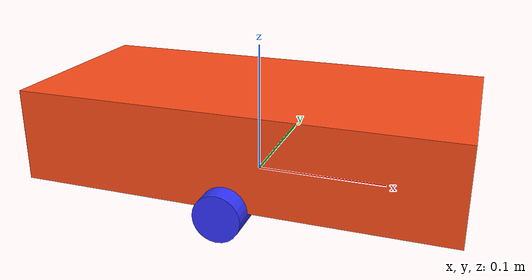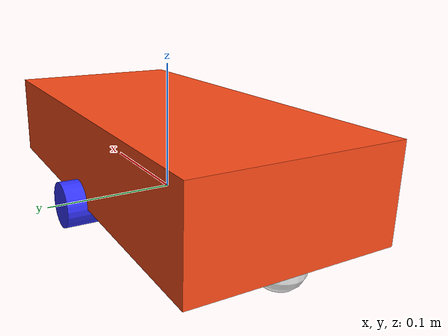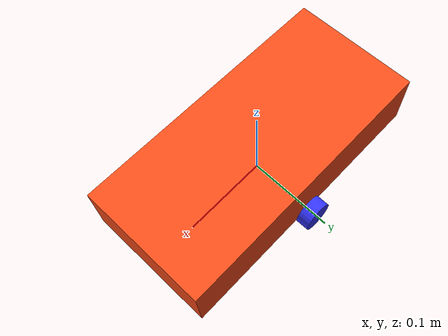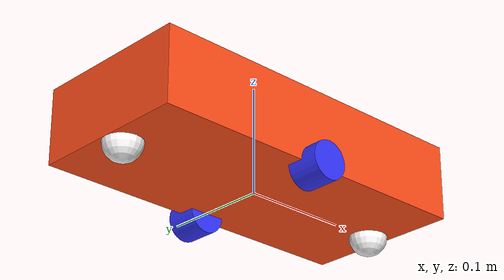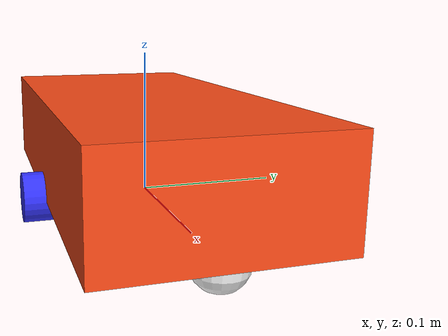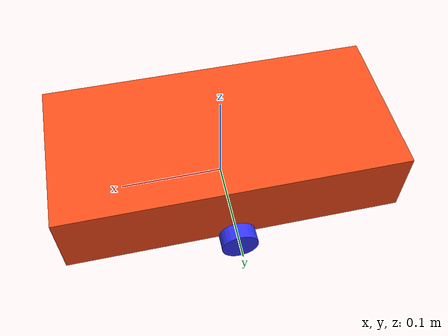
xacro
<?xml version="1.0"?>

<robot xmlns:xacro="http://www.ros.org/wiki/xacro" name="robot">
    <xacro:arg name="prefix" default="" />
    <xacro:arg name="use_mock_hardware" default="false" />

    <xacro:include filename="robot_core.xacro"/>
    <xacro:include filename="$(find autonomous_diff_bot)/description/ros2_control/diff_bot.ros2_control.xacro"/>

    <xacro:diffbot prefix="$(arg prefix)" />
    <xacro:diffbot_ros2_control
        name="DiffBot" prefix="$(arg prefix)" use_mock_hardware="$(arg use_mock_hardware)"/>
</robot>

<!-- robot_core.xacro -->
<robot xmlns:xacro="http://www.ros.org/wiki/xacro">
    <xacro:macro name="diffbot" params="prefix"/>

    <xacro:include filename="inertial_macros.xacro"/>
    <xacro:include filename="robot_definitions.xacro"/>

    <!-- BASE LINK -->
    <link name="base_link"> </link>

    <!-- CHASSIS LINK -->

    <joint name="chassis_joint" type="fixed">
        <parent link="base_link"/>
        <child link="chassis"/>
        <origin xyz="0 0 ${chassis_height/2}"/>
    </joint>

    <link name="chassis">
        <visual>
            <origin xyz="0 0 0"/>
            <geometry>
                <box size="${chassis_length} ${chassis_width} ${chassis_height}"/>
            </geometry>
            <material name="orange"/>
        </visual>
        <collision>
            <origin xyz="0 0 0"/>
            <geometry>
                <box size="${chassis_length} ${chassis_width} ${chassis_height}"/>
            </geometry>
        </collision>
        <xacro:inertial_box mass="0.5" x="${chassis_length}" y="${chassis_width}" z="${chassis_height}">
            <origin xyz="0 0 0" rpy="0 0 0"/>
        </xacro:inertial_box>
    </link>

    <gazebo reference="chassis">
        <material>Gazebo/Orange</material>
    </gazebo>

    <!-- LEFT WHEEL LINK -->

    <joint name="left_wheel_joint" type="continuous">
        <parent link="base_link"/>
        <child link="left_wheel"/>
        <origin xyz="0 ${wheel_offset_y} 0" rpy="-${pi/2} 0 0" />
        <axis xyz="0 0 1"/>
        <limit effort="500.0" velocity="0"/>
        <dynamics damping="1.0" friction="1.0"/>
    </joint>

    <link name="left_wheel">
        <visual>
            <geometry>
                <cylinder radius="${wheel_radius}" length="${wheel_thickness}"/>
            </geometry>
            <material name="blue"/>
        </visual>
        <collision>
            <geometry>
                <sphere radius="${wheel_radius}"/>
            </geometry>
        </collision>
        <xacro:inertial_cylinder mass="${wheel_mass}" length="${wheel_thickness}" radius="${wheel_radius}">
            <origin xyz="0 0 0" rpy="0 0 0"/>
        </xacro:inertial_cylinder>
    </link>

    <gazebo reference="left_wheel">
        <material>Gazebo/Blue</material>
    </gazebo>

    <!-- RIGHT WHEEL LINK -->

    <joint name="right_wheel_joint" type="continuous">
        <parent link="base_link"/>
        <child link="right_wheel"/>
        <origin xyz="0 ${-wheel_offset_y} 0" rpy="${pi/2} 0 0" />
        <axis xyz="0 0 -1"/>
        <limit effort="500.0" velocity="0"/>
        <dynamics damping="1.0" friction="1.0"/>
    </joint>

    <link name="right_wheel">
        <visual>
            <geometry>
                <cylinder radius="${wheel_radius}" length="${wheel_thickness}"/>
            </geometry>
            <material name="blue"/>
        </visual>
        <collision>
            <geometry>
                <sphere radius="${wheel_radius}"/>
            </geometry>
        </collision>
        <xacro:inertial_cylinder mass="${wheel_mass}" length="${wheel_thickness}" radius="${wheel_radius}">
            <origin xyz="0 0 0" rpy="0 0 0"/>
        </xacro:inertial_cylinder>
    </link>

    <gazebo reference="right_wheel">
        <material>Gazebo/Blue</material>
    </gazebo>

    <!-- CASTER WHEEL LINK -->

    <joint name="caster_wheel_joint_front" type="fixed">
        <parent link="chassis"/>
        <child link="caster_wheel_front"/>
        <origin xyz="${caster_wheel_offset_x} 0 ${caster_wheel_offset_z}"/>
    </joint>

    <link name="caster_wheel_front">
        <visual>
            <geometry>
                <sphere radius="${caster_wheel_radius}"/>
            </geometry>
            <material name="white"/>
        </visual>
        <collision>
            <geometry>
                <sphere radius="${caster_wheel_radius}"/>
            </geometry>
        </collision>
        <xacro:inertial_sphere mass="${caster_wheel_mass}" radius="${caster_wheel_radius}">
            <origin xyz="0 0 0" rpy="0 0 0"/>
        </xacro:inertial_sphere>
    </link>

    <joint name="caster_wheel_joint_back" type="fixed">
        <parent link="chassis"/>
        <child link="caster_wheel_back"/>
        <origin xyz="${-caster_wheel_offset_x} 0 ${caster_wheel_offset_z}"/>
    </joint>

    <link name="caster_wheel_back">
        <visual>
            <geometry>
                <sphere radius="${caster_wheel_radius}"/>
            </geometry>
            <material name="white"/>
        </visual>
        <collision>
            <geometry>
                <sphere radius="${caster_wheel_radius}"/>
            </geometry>
        </collision>
        <xacro:inertial_sphere mass="${caster_wheel_mass}" radius="${caster_wheel_radius}">
            <origin xyz="0 0 0" rpy="0 0 0"/>
        </xacro:inertial_sphere>
    </link>

    <gazebo reference="caster_wheel">
        <material>Gazebo/White</material>
        <mu1 value="0.001"/>
        <mu2 value="0.001"/>
    </gazebo>

</robot>

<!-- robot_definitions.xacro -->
<robot xmlns:xacro="http://www.ros.org/wiki/xacro" name="robot">
    <xacro:property name="chassis_length" value="0.32"/>
    <xacro:property name="chassis_width" value="0.15"/>
    <xacro:property name="chassis_height" value="0.07"/>
    <xacro:property name="chassis_mass" value="1.0"/>
    <xacro:property name="wheel_radius" value="0.0175"/>
    <xacro:property name="wheel_thickness" value="0.03"/>
    <xacro:property name="wheel_mass" value="0.4"/>
    <xacro:property name="wheel_offset_x" value="0"/>
    <xacro:property name="wheel_offset_y" value="0.075"/>
    <xacro:property name="wheel_offset_z" value="0"/>
    <xacro:property name="caster_wheel_radius" value="0.0175"/>
    <xacro:property name="caster_wheel_mass" value="0.01"/>
    <xacro:property name="caster_wheel_offset_x" value="${chassis_length/2 - caster_wheel_radius}"/>
    <xacro:property name="caster_wheel_offset_z" value="${-chassis_height/2 + wheel_offset_z - wheel_radius + caster_wheel_radius}"/>

    <material name="white">
        <color rgba="1 1 1 1" />
    </material>

    <material name="orange">
        <color rgba="1 0.3 0.1 1"/>
    </material>

    <material name="blue">
        <color rgba="0.2 0.2 1 1"/>
    </material>

    <material name="black">
        <color rgba="0 0 0 1"/>
    </material>

    <material name="red">
        <color rgba="1 0 0 1"/>
    </material>
</robot>
